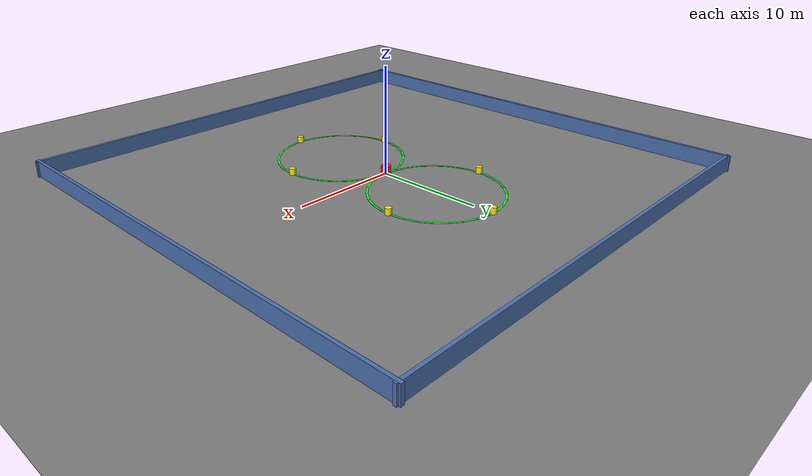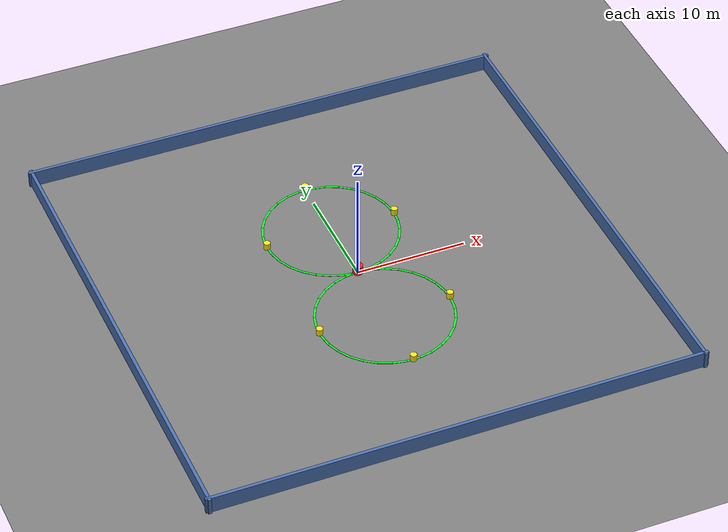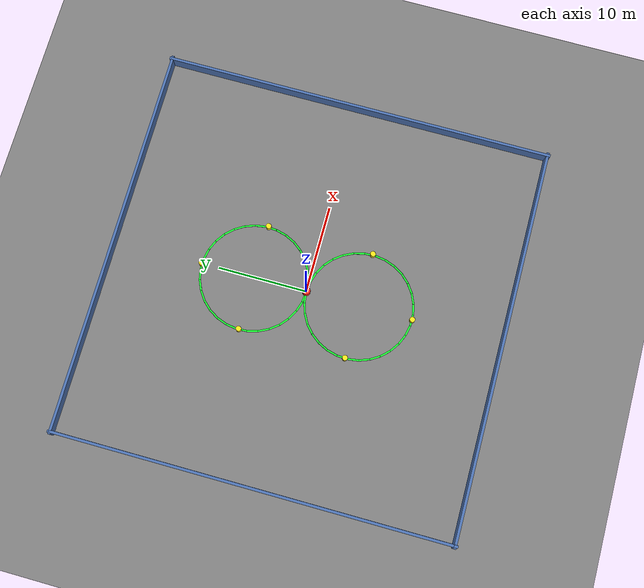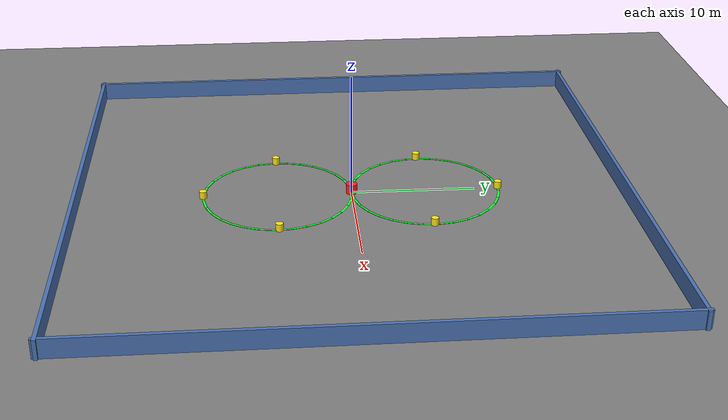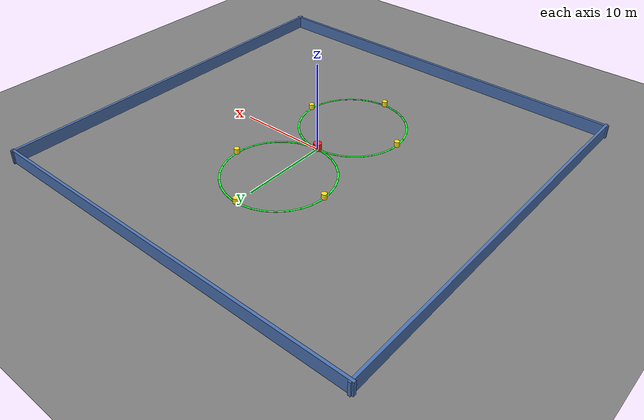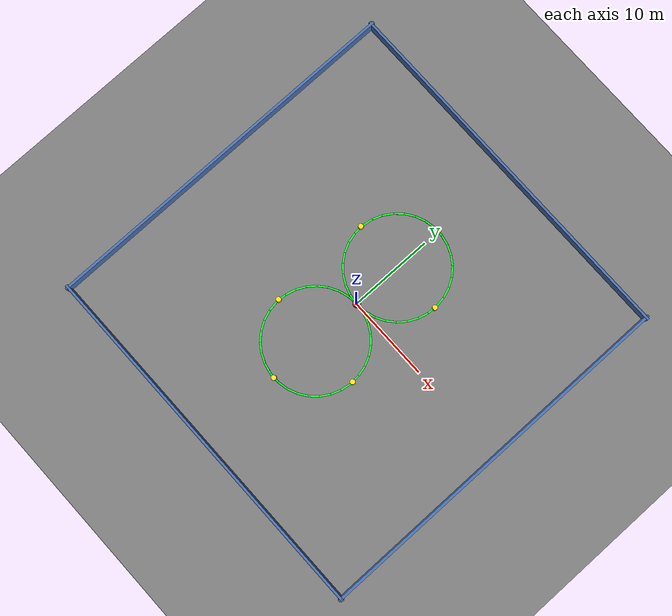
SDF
<?xml version="1.0"?>
<sdf version="1.8">
  <world name="leader_follower_world">

    <physics name="default_physics" type="ode">
      <max_step_size>0.002</max_step_size>
      <real_time_factor>1.0</real_time_factor>
      <real_time_update_rate>500</real_time_update_rate>
    </physics>

    <plugin filename="gz-sim-physics-system" name="gz::sim::systems::Physics" />
    <plugin filename="gz-sim-user-commands-system" name="gz::sim::systems::UserCommands" />
    <plugin filename="gz-sim-scene-broadcaster-system" name="gz::sim::systems::SceneBroadcaster" />
    <plugin filename="gz-sim-imu-system" name="gz::sim::systems::Imu" />
    <plugin filename="gz-sim-navsat-system" name="gz::sim::systems::NavSat" />

    <spherical_coordinates>
      <surface_model>EARTH_WGS84</surface_model>
      <world_frame_orientation>ENU</world_frame_orientation>
      <latitude_deg>36.61002559225</latitude_deg>
      <longitude_deg>127.28772570583</longitude_deg>
      <elevation>0.0</elevation>
      <heading_deg>0.0</heading_deg>
    </spherical_coordinates>

    <!-- Sunlight -->
    <light type="directional" name="sun">
      <cast_shadows>true</cast_shadows>
      <pose>0 0 10 0 0 0</pose>
      <diffuse>0.8 0.8 0.8 1</diffuse>
      <specular>0.2 0.2 0.2 1</specular>
      <attenuation>
        <range>1000</range>
        <constant>0.9</constant>
        <linear>0.01</linear>
        <quadratic>0.001</quadratic>
      </attenuation>
      <direction>-0.5 0.1 -0.9</direction>
    </light>

    <!-- Ground plane -->
    <model name="ground_plane">
      <static>true</static>
      <link name="link">
        <collision name="collision">
          <geometry>
            <plane>
              <normal>0 0 1</normal>
              <size>200 200</size>
            </plane>
          </geometry>
          <surface>
            <friction>
              <ode>
                <mu>1.0</mu>
                <mu2>1.0</mu2>
              </ode>
            </friction>
          </surface>
        </collision>
        <visual name="visual">
          <geometry>
            <plane>
              <normal>0 0 1</normal>
              <size>200 200</size>
            </plane>
          </geometry>
          <material>
            <ambient>0.3 0.3 0.3 1</ambient>
            <diffuse>0.5 0.5 0.5 1</diffuse>
            <specular>0.1 0.1 0.1 1</specular>
          </material>
        </visual>
      </link>
    </model>

    <!-- Walled arena (44 x 44, centred at origin) so the demo has a visible
         "world" the robots drive across. Walls at +/-22 m. Static, no sensors. -->
    <model name="arena_walls">
      <static>true</static>
      <link name="link">
        <!-- North (+Y) -->
        <collision name="n_col"><pose>0 22 0.75 0 0 0</pose>
          <geometry><box><size>44.6 0.3 1.5</size></box></geometry></collision>
        <visual name="n_vis"><pose>0 22 0.75 0 0 0</pose>
          <geometry><box><size>44.6 0.3 1.5</size></box></geometry>
          <material><ambient>0.25 0.35 0.55 1</ambient><diffuse>0.3 0.45 0.7 1</diffuse></material></visual>
        <!-- South (-Y) -->
        <collision name="s_col"><pose>0 -22 0.75 0 0 0</pose>
          <geometry><box><size>44.6 0.3 1.5</size></box></geometry></collision>
        <visual name="s_vis"><pose>0 -22 0.75 0 0 0</pose>
          <geometry><box><size>44.6 0.3 1.5</size></box></geometry>
          <material><ambient>0.25 0.35 0.55 1</ambient><diffuse>0.3 0.45 0.7 1</diffuse></material></visual>
        <!-- East (+X) -->
        <collision name="e_col"><pose>22 0 0.75 0 0 0</pose>
          <geometry><box><size>0.3 44.6 1.5</size></box></geometry></collision>
        <visual name="e_vis"><pose>22 0 0.75 0 0 0</pose>
          <geometry><box><size>0.3 44.6 1.5</size></box></geometry>
          <material><ambient>0.25 0.35 0.55 1</ambient><diffuse>0.3 0.45 0.7 1</diffuse></material></visual>
        <!-- West (-X) -->
        <collision name="w_col"><pose>-22 0 0.75 0 0 0</pose>
          <geometry><box><size>0.3 44.6 1.5</size></box></geometry></collision>
        <visual name="w_vis"><pose>-22 0 0.75 0 0 0</pose>
          <geometry><box><size>0.3 44.6 1.5</size></box></geometry>
          <material><ambient>0.25 0.35 0.55 1</ambient><diffuse>0.3 0.45 0.7 1</diffuse></material></visual>
      </link>
    </model>

    <model name="route_path">
      <static>true</static>
      <link name="link">
        <visual name="seg0"><pose>0.604 0.061 0.02 0 0 0.1013</pose>
          <geometry><box><size>1.264 0.2 0.02</size></box></geometry>
          <material><ambient>0.1 0.9 0.2 1</ambient><diffuse>0.1 1 0.2 1</diffuse><emissive>0.05 0.4 0.1 1</emissive></material></visual>
        <visual name="seg1"><pose>1.787 0.305 0.02 0 0 0.3040</pose>
          <geometry><box><size>1.264 0.2 0.02</size></box></geometry>
          <material><ambient>0.1 0.9 0.2 1</ambient><diffuse>0.1 1 0.2 1</diffuse><emissive>0.05 0.4 0.1 1</emissive></material></visual>
        <visual name="seg2"><pose>2.897 0.781 0.02 0 0 0.5067</pose>
          <geometry><box><size>1.264 0.2 0.02</size></box></geometry>
          <material><ambient>0.1 0.9 0.2 1</ambient><diffuse>0.1 1 0.2 1</diffuse><emissive>0.05 0.4 0.1 1</emissive></material></visual>
        <visual name="seg3"><pose>3.888 1.471 0.02 0 0 0.7094</pose>
          <geometry><box><size>1.264 0.2 0.02</size></box></geometry>
          <material><ambient>0.1 0.9 0.2 1</ambient><diffuse>0.1 1 0.2 1</diffuse><emissive>0.05 0.4 0.1 1</emissive></material></visual>
        <visual name="seg4"><pose>4.720 2.346 0.02 0 0 0.9121</pose>
          <geometry><box><size>1.264 0.2 0.02</size></box></geometry>
          <material><ambient>0.1 0.9 0.2 1</ambient><diffuse>0.1 1 0.2 1</diffuse><emissive>0.05 0.4 0.1 1</emissive></material></visual>
        <visual name="seg5"><pose>5.359 3.371 0.02 0 0 1.1148</pose>
          <geometry><box><size>1.264 0.2 0.02</size></box></geometry>
          <material><ambient>0.1 0.9 0.2 1</ambient><diffuse>0.1 1 0.2 1</diffuse><emissive>0.05 0.4 0.1 1</emissive></material></visual>
        <visual name="seg6"><pose>5.779 4.504 0.02 0 0 1.3174</pose>
          <geometry><box><size>1.264 0.2 0.02</size></box></geometry>
          <material><ambient>0.1 0.9 0.2 1</ambient><diffuse>0.1 1 0.2 1</diffuse><emissive>0.05 0.4 0.1 1</emissive></material></visual>
        <visual name="seg7"><pose>5.962 5.698 0.02 0 0 1.5201</pose>
          <geometry><box><size>1.264 0.2 0.02</size></box></geometry>
          <material><ambient>0.1 0.9 0.2 1</ambient><diffuse>0.1 1 0.2 1</diffuse><emissive>0.05 0.4 0.1 1</emissive></material></visual>
        <visual name="seg8"><pose>5.900 6.904 0.02 0 0 1.7228</pose>
          <geometry><box><size>1.264 0.2 0.02</size></box></geometry>
          <material><ambient>0.1 0.9 0.2 1</ambient><diffuse>0.1 1 0.2 1</diffuse><emissive>0.05 0.4 0.1 1</emissive></material></visual>
        <visual name="seg9"><pose>5.598 8.073 0.02 0 0 1.9255</pose>
          <geometry><box><size>1.264 0.2 0.02</size></box></geometry>
          <material><ambient>0.1 0.9 0.2 1</ambient><diffuse>0.1 1 0.2 1</diffuse><emissive>0.05 0.4 0.1 1</emissive></material></visual>
        <visual name="seg10"><pose>5.066 9.158 0.02 0 0 2.1282</pose>
          <geometry><box><size>1.264 0.2 0.02</size></box></geometry>
          <material><ambient>0.1 0.9 0.2 1</ambient><diffuse>0.1 1 0.2 1</diffuse><emissive>0.05 0.4 0.1 1</emissive></material></visual>
        <visual name="seg11"><pose>4.326 10.113 0.02 0 0 2.3309</pose>
          <geometry><box><size>1.264 0.2 0.02</size></box></geometry>
          <material><ambient>0.1 0.9 0.2 1</ambient><diffuse>0.1 1 0.2 1</diffuse><emissive>0.05 0.4 0.1 1</emissive></material></visual>
        <visual name="seg12"><pose>3.410 10.899 0.02 0 0 2.5335</pose>
          <geometry><box><size>1.264 0.2 0.02</size></box></geometry>
          <material><ambient>0.1 0.9 0.2 1</ambient><diffuse>0.1 1 0.2 1</diffuse><emissive>0.05 0.4 0.1 1</emissive></material></visual>
        <visual name="seg13"><pose>2.354 11.485 0.02 0 0 2.7362</pose>
          <geometry><box><size>1.264 0.2 0.02</size></box></geometry>
          <material><ambient>0.1 0.9 0.2 1</ambient><diffuse>0.1 1 0.2 1</diffuse><emissive>0.05 0.4 0.1 1</emissive></material></visual>
        <visual name="seg14"><pose>1.202 11.847 0.02 0 0 2.9389</pose>
          <geometry><box><size>1.264 0.2 0.02</size></box></geometry>
          <material><ambient>0.1 0.9 0.2 1</ambient><diffuse>0.1 1 0.2 1</diffuse><emissive>0.05 0.4 0.1 1</emissive></material></visual>
        <visual name="seg15"><pose>0.000 11.969 0.02 0 0 3.1416</pose>
          <geometry><box><size>1.264 0.2 0.02</size></box></geometry>
          <material><ambient>0.1 0.9 0.2 1</ambient><diffuse>0.1 1 0.2 1</diffuse><emissive>0.05 0.4 0.1 1</emissive></material></visual>
        <visual name="seg16"><pose>-1.202 11.847 0.02 0 0 -2.9389</pose>
          <geometry><box><size>1.264 0.2 0.02</size></box></geometry>
          <material><ambient>0.1 0.9 0.2 1</ambient><diffuse>0.1 1 0.2 1</diffuse><emissive>0.05 0.4 0.1 1</emissive></material></visual>
        <visual name="seg17"><pose>-2.354 11.485 0.02 0 0 -2.7362</pose>
          <geometry><box><size>1.264 0.2 0.02</size></box></geometry>
          <material><ambient>0.1 0.9 0.2 1</ambient><diffuse>0.1 1 0.2 1</diffuse><emissive>0.05 0.4 0.1 1</emissive></material></visual>
        <visual name="seg18"><pose>-3.410 10.899 0.02 0 0 -2.5335</pose>
          <geometry><box><size>1.264 0.2 0.02</size></box></geometry>
          <material><ambient>0.1 0.9 0.2 1</ambient><diffuse>0.1 1 0.2 1</diffuse><emissive>0.05 0.4 0.1 1</emissive></material></visual>
        <visual name="seg19"><pose>-4.326 10.113 0.02 0 0 -2.3309</pose>
          <geometry><box><size>1.264 0.2 0.02</size></box></geometry>
          <material><ambient>0.1 0.9 0.2 1</ambient><diffuse>0.1 1 0.2 1</diffuse><emissive>0.05 0.4 0.1 1</emissive></material></visual>
        <visual name="seg20"><pose>-5.066 9.158 0.02 0 0 -2.1282</pose>
          <geometry><box><size>1.264 0.2 0.02</size></box></geometry>
          <material><ambient>0.1 0.9 0.2 1</ambient><diffuse>0.1 1 0.2 1</diffuse><emissive>0.05 0.4 0.1 1</emissive></material></visual>
        <visual name="seg21"><pose>-5.598 8.073 0.02 0 0 -1.9255</pose>
          <geometry><box><size>1.264 0.2 0.02</size></box></geometry>
          <material><ambient>0.1 0.9 0.2 1</ambient><diffuse>0.1 1 0.2 1</diffuse><emissive>0.05 0.4 0.1 1</emissive></material></visual>
        <visual name="seg22"><pose>-5.900 6.904 0.02 0 0 -1.7228</pose>
          <geometry><box><size>1.264 0.2 0.02</size></box></geometry>
          <material><ambient>0.1 0.9 0.2 1</ambient><diffuse>0.1 1 0.2 1</diffuse><emissive>0.05 0.4 0.1 1</emissive></material></visual>
        <visual name="seg23"><pose>-5.962 5.698 0.02 0 0 -1.5201</pose>
          <geometry><box><size>1.264 0.2 0.02</size></box></geometry>
          <material><ambient>0.1 0.9 0.2 1</ambient><diffuse>0.1 1 0.2 1</diffuse><emissive>0.05 0.4 0.1 1</emissive></material></visual>
        <visual name="seg24"><pose>-5.779 4.504 0.02 0 0 -1.3174</pose>
          <geometry><box><size>1.264 0.2 0.02</size></box></geometry>
          <material><ambient>0.1 0.9 0.2 1</ambient><diffuse>0.1 1 0.2 1</diffuse><emissive>0.05 0.4 0.1 1</emissive></material></visual>
        <visual name="seg25"><pose>-5.359 3.371 0.02 0 0 -1.1148</pose>
          <geometry><box><size>1.264 0.2 0.02</size></box></geometry>
          <material><ambient>0.1 0.9 0.2 1</ambient><diffuse>0.1 1 0.2 1</diffuse><emissive>0.05 0.4 0.1 1</emissive></material></visual>
        <visual name="seg26"><pose>-4.720 2.346 0.02 0 0 -0.9121</pose>
          <geometry><box><size>1.264 0.2 0.02</size></box></geometry>
          <material><ambient>0.1 0.9 0.2 1</ambient><diffuse>0.1 1 0.2 1</diffuse><emissive>0.05 0.4 0.1 1</emissive></material></visual>
        <visual name="seg27"><pose>-3.888 1.471 0.02 0 0 -0.7094</pose>
          <geometry><box><size>1.264 0.2 0.02</size></box></geometry>
          <material><ambient>0.1 0.9 0.2 1</ambient><diffuse>0.1 1 0.2 1</diffuse><emissive>0.05 0.4 0.1 1</emissive></material></visual>
        <visual name="seg28"><pose>-2.897 0.781 0.02 0 0 -0.5067</pose>
          <geometry><box><size>1.264 0.2 0.02</size></box></geometry>
          <material><ambient>0.1 0.9 0.2 1</ambient><diffuse>0.1 1 0.2 1</diffuse><emissive>0.05 0.4 0.1 1</emissive></material></visual>
        <visual name="seg29"><pose>-1.787 0.305 0.02 0 0 -0.3040</pose>
          <geometry><box><size>1.264 0.2 0.02</size></box></geometry>
          <material><ambient>0.1 0.9 0.2 1</ambient><diffuse>0.1 1 0.2 1</diffuse><emissive>0.05 0.4 0.1 1</emissive></material></visual>
        <visual name="seg30"><pose>-0.604 0.061 0.02 0 0 -0.1013</pose>
          <geometry><box><size>1.264 0.2 0.02</size></box></geometry>
          <material><ambient>0.1 0.9 0.2 1</ambient><diffuse>0.1 1 0.2 1</diffuse><emissive>0.05 0.4 0.1 1</emissive></material></visual>
        <visual name="seg31"><pose>0.604 -0.061 0.02 0 0 -0.1013</pose>
          <geometry><box><size>1.264 0.2 0.02</size></box></geometry>
          <material><ambient>0.1 0.9 0.2 1</ambient><diffuse>0.1 1 0.2 1</diffuse><emissive>0.05 0.4 0.1 1</emissive></material></visual>
        <visual name="seg32"><pose>1.787 -0.305 0.02 0 0 -0.3040</pose>
          <geometry><box><size>1.264 0.2 0.02</size></box></geometry>
          <material><ambient>0.1 0.9 0.2 1</ambient><diffuse>0.1 1 0.2 1</diffuse><emissive>0.05 0.4 0.1 1</emissive></material></visual>
        <visual name="seg33"><pose>2.897 -0.781 0.02 0 0 -0.5067</pose>
          <geometry><box><size>1.264 0.2 0.02</size></box></geometry>
          <material><ambient>0.1 0.9 0.2 1</ambient><diffuse>0.1 1 0.2 1</diffuse><emissive>0.05 0.4 0.1 1</emissive></material></visual>
        <visual name="seg34"><pose>3.888 -1.471 0.02 0 0 -0.7094</pose>
          <geometry><box><size>1.264 0.2 0.02</size></box></geometry>
          <material><ambient>0.1 0.9 0.2 1</ambient><diffuse>0.1 1 0.2 1</diffuse><emissive>0.05 0.4 0.1 1</emissive></material></visual>
        <visual name="seg35"><pose>4.720 -2.346 0.02 0 0 -0.9121</pose>
          <geometry><box><size>1.264 0.2 0.02</size></box></geometry>
          <material><ambient>0.1 0.9 0.2 1</ambient><diffuse>0.1 1 0.2 1</diffuse><emissive>0.05 0.4 0.1 1</emissive></material></visual>
        <visual name="seg36"><pose>5.359 -3.371 0.02 0 0 -1.1148</pose>
          <geometry><box><size>1.264 0.2 0.02</size></box></geometry>
          <material><ambient>0.1 0.9 0.2 1</ambient><diffuse>0.1 1 0.2 1</diffuse><emissive>0.05 0.4 0.1 1</emissive></material></visual>
        <visual name="seg37"><pose>5.779 -4.504 0.02 0 0 -1.3174</pose>
          <geometry><box><size>1.264 0.2 0.02</size></box></geometry>
          <material><ambient>0.1 0.9 0.2 1</ambient><diffuse>0.1 1 0.2 1</diffuse><emissive>0.05 0.4 0.1 1</emissive></material></visual>
        <visual name="seg38"><pose>5.962 -5.698 0.02 0 0 -1.5201</pose>
          <geometry><box><size>1.264 0.2 0.02</size></box></geometry>
          <material><ambient>0.1 0.9 0.2 1</ambient><diffuse>0.1 1 0.2 1</diffuse><emissive>0.05 0.4 0.1 1</emissive></material></visual>
        <visual name="seg39"><pose>5.900 -6.904 0.02 0 0 -1.7228</pose>
          <geometry><box><size>1.264 0.2 0.02</size></box></geometry>
          <material><ambient>0.1 0.9 0.2 1</ambient><diffuse>0.1 1 0.2 1</diffuse><emissive>0.05 0.4 0.1 1</emissive></material></visual>
        <visual name="seg40"><pose>5.598 -8.073 0.02 0 0 -1.9255</pose>
          <geometry><box><size>1.264 0.2 0.02</size></box></geometry>
          <material><ambient>0.1 0.9 0.2 1</ambient><diffuse>0.1 1 0.2 1</diffuse><emissive>0.05 0.4 0.1 1</emissive></material></visual>
        <visual name="seg41"><pose>5.066 -9.158 0.02 0 0 -2.1282</pose>
          <geometry><box><size>1.264 0.2 0.02</size></box></geometry>
          <material><ambient>0.1 0.9 0.2 1</ambient><diffuse>0.1 1 0.2 1</diffuse><emissive>0.05 0.4 0.1 1</emissive></material></visual>
        <visual name="seg42"><pose>4.326 -10.113 0.02 0 0 -2.3309</pose>
          <geometry><box><size>1.264 0.2 0.02</size></box></geometry>
          <material><ambient>0.1 0.9 0.2 1</ambient><diffuse>0.1 1 0.2 1</diffuse><emissive>0.05 0.4 0.1 1</emissive></material></visual>
        <visual name="seg43"><pose>3.410 -10.899 0.02 0 0 -2.5335</pose>
          <geometry><box><size>1.264 0.2 0.02</size></box></geometry>
          <material><ambient>0.1 0.9 0.2 1</ambient><diffuse>0.1 1 0.2 1</diffuse><emissive>0.05 0.4 0.1 1</emissive></material></visual>
        <visual name="seg44"><pose>2.354 -11.485 0.02 0 0 -2.7362</pose>
          <geometry><box><size>1.264 0.2 0.02</size></box></geometry>
          <material><ambient>0.1 0.9 0.2 1</ambient><diffuse>0.1 1 0.2 1</diffuse><emissive>0.05 0.4 0.1 1</emissive></material></visual>
        <visual name="seg45"><pose>1.202 -11.847 0.02 0 0 -2.9389</pose>
          <geometry><box><size>1.264 0.2 0.02</size></box></geometry>
          <material><ambient>0.1 0.9 0.2 1</ambient><diffuse>0.1 1 0.2 1</diffuse><emissive>0.05 0.4 0.1 1</emissive></material></visual>
        <visual name="seg46"><pose>0.000 -11.969 0.02 0 0 3.1416</pose>
          <geometry><box><size>1.264 0.2 0.02</size></box></geometry>
          <material><ambient>0.1 0.9 0.2 1</ambient><diffuse>0.1 1 0.2 1</diffuse><emissive>0.05 0.4 0.1 1</emissive></material></visual>
        <visual name="seg47"><pose>-1.202 -11.847 0.02 0 0 2.9389</pose>
          <geometry><box><size>1.264 0.2 0.02</size></box></geometry>
          <material><ambient>0.1 0.9 0.2 1</ambient><diffuse>0.1 1 0.2 1</diffuse><emissive>0.05 0.4 0.1 1</emissive></material></visual>
        <visual name="seg48"><pose>-2.354 -11.485 0.02 0 0 2.7362</pose>
          <geometry><box><size>1.264 0.2 0.02</size></box></geometry>
          <material><ambient>0.1 0.9 0.2 1</ambient><diffuse>0.1 1 0.2 1</diffuse><emissive>0.05 0.4 0.1 1</emissive></material></visual>
        <visual name="seg49"><pose>-3.410 -10.899 0.02 0 0 2.5335</pose>
          <geometry><box><size>1.264 0.2 0.02</size></box></geometry>
          <material><ambient>0.1 0.9 0.2 1</ambient><diffuse>0.1 1 0.2 1</diffuse><emissive>0.05 0.4 0.1 1</emissive></material></visual>
        <visual name="seg50"><pose>-4.326 -10.113 0.02 0 0 2.3309</pose>
          <geometry><box><size>1.264 0.2 0.02</size></box></geometry>
          <material><ambient>0.1 0.9 0.2 1</ambient><diffuse>0.1 1 0.2 1</diffuse><emissive>0.05 0.4 0.1 1</emissive></material></visual>
        <visual name="seg51"><pose>-5.066 -9.158 0.02 0 0 2.1282</pose>
          <geometry><box><size>1.264 0.2 0.02</size></box></geometry>
          <material><ambient>0.1 0.9 0.2 1</ambient><diffuse>0.1 1 0.2 1</diffuse><emissive>0.05 0.4 0.1 1</emissive></material></visual>
        <visual name="seg52"><pose>-5.598 -8.073 0.02 0 0 1.9255</pose>
          <geometry><box><size>1.264 0.2 0.02</size></box></geometry>
          <material><ambient>0.1 0.9 0.2 1</ambient><diffuse>0.1 1 0.2 1</diffuse><emissive>0.05 0.4 0.1 1</emissive></material></visual>
        <visual name="seg53"><pose>-5.900 -6.904 0.02 0 0 1.7228</pose>
          <geometry><box><size>1.264 0.2 0.02</size></box></geometry>
          <material><ambient>0.1 0.9 0.2 1</ambient><diffuse>0.1 1 0.2 1</diffuse><emissive>0.05 0.4 0.1 1</emissive></material></visual>
        <visual name="seg54"><pose>-5.962 -5.698 0.02 0 0 1.5201</pose>
          <geometry><box><size>1.264 0.2 0.02</size></box></geometry>
          <material><ambient>0.1 0.9 0.2 1</ambient><diffuse>0.1 1 0.2 1</diffuse><emissive>0.05 0.4 0.1 1</emissive></material></visual>
        <visual name="seg55"><pose>-5.779 -4.504 0.02 0 0 1.3174</pose>
          <geometry><box><size>1.264 0.2 0.02</size></box></geometry>
          <material><ambient>0.1 0.9 0.2 1</ambient><diffuse>0.1 1 0.2 1</diffuse><emissive>0.05 0.4 0.1 1</emissive></material></visual>
        <visual name="seg56"><pose>-5.359 -3.371 0.02 0 0 1.1148</pose>
          <geometry><box><size>1.264 0.2 0.02</size></box></geometry>
          <material><ambient>0.1 0.9 0.2 1</ambient><diffuse>0.1 1 0.2 1</diffuse><emissive>0.05 0.4 0.1 1</emissive></material></visual>
        <visual name="seg57"><pose>-4.720 -2.346 0.02 0 0 0.9121</pose>
          <geometry><box><size>1.264 0.2 0.02</size></box></geometry>
          <material><ambient>0.1 0.9 0.2 1</ambient><diffuse>0.1 1 0.2 1</diffuse><emissive>0.05 0.4 0.1 1</emissive></material></visual>
        <visual name="seg58"><pose>-3.888 -1.471 0.02 0 0 0.7094</pose>
          <geometry><box><size>1.264 0.2 0.02</size></box></geometry>
          <material><ambient>0.1 0.9 0.2 1</ambient><diffuse>0.1 1 0.2 1</diffuse><emissive>0.05 0.4 0.1 1</emissive></material></visual>
        <visual name="seg59"><pose>-2.897 -0.781 0.02 0 0 0.5067</pose>
          <geometry><box><size>1.264 0.2 0.02</size></box></geometry>
          <material><ambient>0.1 0.9 0.2 1</ambient><diffuse>0.1 1 0.2 1</diffuse><emissive>0.05 0.4 0.1 1</emissive></material></visual>
        <visual name="seg60"><pose>-1.787 -0.305 0.02 0 0 0.3040</pose>
          <geometry><box><size>1.264 0.2 0.02</size></box></geometry>
          <material><ambient>0.1 0.9 0.2 1</ambient><diffuse>0.1 1 0.2 1</diffuse><emissive>0.05 0.4 0.1 1</emissive></material></visual>
        <visual name="seg61"><pose>-0.604 -0.061 0.02 0 0 0.1013</pose>
          <geometry><box><size>1.264 0.2 0.02</size></box></geometry>
          <material><ambient>0.1 0.9 0.2 1</ambient><diffuse>0.1 1 0.2 1</diffuse><emissive>0.05 0.4 0.1 1</emissive></material></visual>
        <visual name="wp0"><pose>0 12 0.3 0 0 0</pose>
          <geometry><cylinder><radius>0.3</radius><length>0.6</length></cylinder></geometry>
          <material><ambient>1 0.85 0.1 1</ambient><diffuse>1 0.9 0.1 1</diffuse><emissive>0.4 0.35 0.05 1</emissive></material></visual>
        <visual name="wp1"><pose>6 6 0.3 0 0 0</pose>
          <geometry><cylinder><radius>0.3</radius><length>0.6</length></cylinder></geometry>
          <material><ambient>1 0.85 0.1 1</ambient><diffuse>1 0.9 0.1 1</diffuse><emissive>0.4 0.35 0.05 1</emissive></material></visual>
        <visual name="wp2"><pose>-6 6 0.3 0 0 0</pose>
          <geometry><cylinder><radius>0.3</radius><length>0.6</length></cylinder></geometry>
          <material><ambient>1 0.85 0.1 1</ambient><diffuse>1 0.9 0.1 1</diffuse><emissive>0.4 0.35 0.05 1</emissive></material></visual>
        <visual name="wp3"><pose>0 -12 0.3 0 0 0</pose>
          <geometry><cylinder><radius>0.3</radius><length>0.6</length></cylinder></geometry>
          <material><ambient>1 0.85 0.1 1</ambient><diffuse>1 0.9 0.1 1</diffuse><emissive>0.4 0.35 0.05 1</emissive></material></visual>
        <visual name="wp4"><pose>6 -6 0.3 0 0 0</pose>
          <geometry><cylinder><radius>0.3</radius><length>0.6</length></cylinder></geometry>
          <material><ambient>1 0.85 0.1 1</ambient><diffuse>1 0.9 0.1 1</diffuse><emissive>0.4 0.35 0.05 1</emissive></material></visual>
        <visual name="wp5"><pose>-6 -6 0.3 0 0 0</pose>
          <geometry><cylinder><radius>0.3</radius><length>0.6</length></cylinder></geometry>
          <material><ambient>1 0.85 0.1 1</ambient><diffuse>1 0.9 0.1 1</diffuse><emissive>0.4 0.35 0.05 1</emissive></material></visual>
        <visual name="goal"><pose>0 0 0.4 0 0 0</pose>
          <geometry><cylinder><radius>0.45</radius><length>0.8</length></cylinder></geometry>
          <material><ambient>1 0.15 0.1 1</ambient><diffuse>1 0.15 0.1 1</diffuse><emissive>0.4 0.05 0.03 1</emissive></material></visual>
      </link>
    </model>

  </world>
</sdf>
